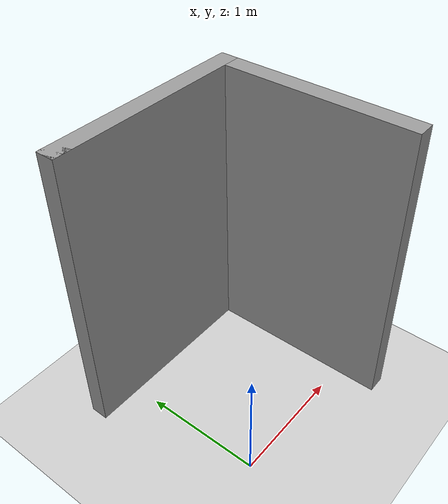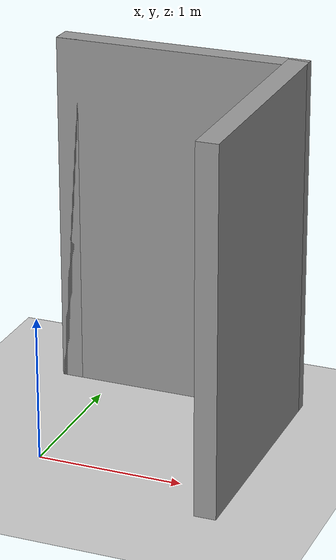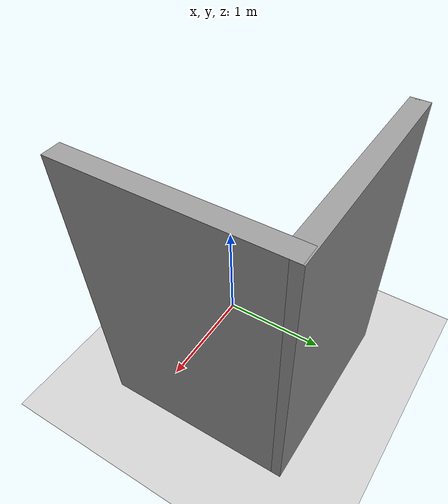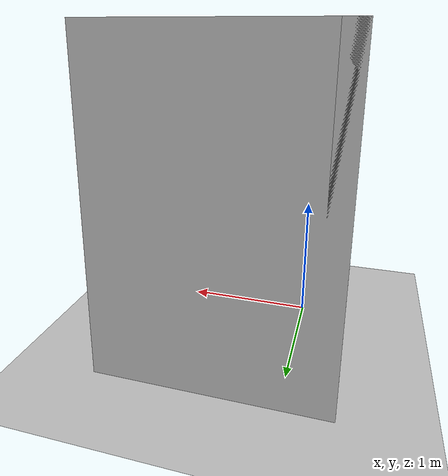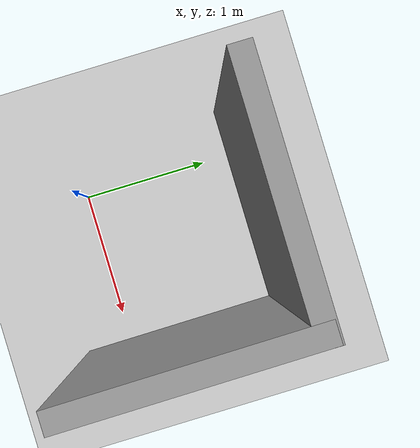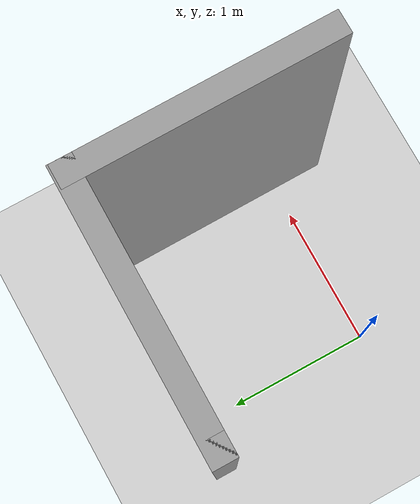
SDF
<?xml version="1.0" ?>
<sdf version="1.4">
  <world name="default">

    <include>
      <uri>model://sun</uri>
    </include>

    <include>
      <uri>model://ground_plane</uri>
    </include>

    <include>
      <uri>model://cornerWall</uri>
      <pose>0.5 0.5 0 0 0 3.14</pose>
    </include>

  </world>
</sdf>

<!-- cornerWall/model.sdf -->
<sdf version='1.6'>
  <model name='cornerWall'>
    <pose frame=''>-0.170026 -0.200974 0 0 -0 0</pose>
    <link name='Wall_2'>
      <collision name='Wall_2_Collision'>
        <geometry>
          <box>
            <size>1.70404 0.15 2.5</size>
          </box>
        </geometry>
        <pose frame=''>0 0 1.25 0 -0 0</pose>
      </collision>
      <visual name='Wall_2_Visual'>
        <pose frame=''>0 0 1.25 0 -0 0</pose>
        <geometry>
          <box>
            <size>1.70404 0.15 2.5</size>
          </box>
        </geometry>
        <material>
          <script>
            <uri>file://media/materials/scripts/gazebo.material</uri>
            <name>Gazebo/Grey</name>
          </script>
          <ambient>1 1 1 1</ambient>
        </material>
        <meta>
          <layer>0</layer>
        </meta>
      </visual>
      <pose frame=''>-0.799724 0.005474 0 0 -0 -1.5634</pose>
    </link>
    <link name='Wall_3'>
      <collision name='Wall_3_Collision'>
        <geometry>
          <box>
            <size>1.75 0.15 2.5</size>
          </box>
        </geometry>
        <pose frame=''>0 0 1.25 0 -0 0</pose>
      </collision>
      <visual name='Wall_3_Visual'>
        <pose frame=''>0 0 1.25 0 -0 0</pose>
        <geometry>
          <box>
            <size>1.75 0.15 2.5</size>
          </box>
        </geometry>
        <material>
          <script>
            <uri>file://media/materials/scripts/gazebo.material</uri>
            <name>Gazebo/Grey</name>
          </script>
          <ambient>1 1 1 1</ambient>
        </material>
        <meta>
          <layer>0</layer>
        </meta>
      </visual>
      <pose frame=''>0.006026 -0.783026 0 0 -0 0</pose>
    </link>
    <link name='Wall_4'>
      <collision name='Wall_4_Collision'>
        <geometry>
          <box>
            <size>0.15 0.15 2.5</size>
          </box>
        </geometry>
        <pose frame=''>0 0 1.25 0 -0 0</pose>
      </collision>
      <visual name='Wall_4_Visual'>
        <pose frame=''>0 0 1.25 0 -0 0</pose>
        <geometry>
          <box>
            <size>0.15 0.15 2.5</size>
          </box>
        </geometry>
        <material>
          <script>
            <uri>file://media/materials/scripts/gazebo.material</uri>
            <name>Gazebo/Grey</name>
          </script>
          <ambient>1 1 1 1</ambient>
        </material>
        <meta>
          <layer>0</layer>
        </meta>
      </visual>
      <pose frame=''>0.806026 -0.783026 0 0 -0 0</pose>
    </link>
    <static>1</static>
  </model>
</sdf>
